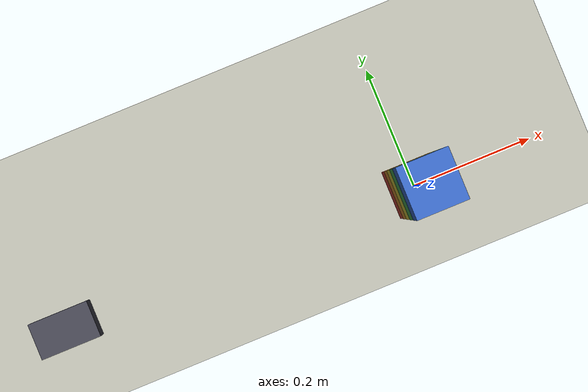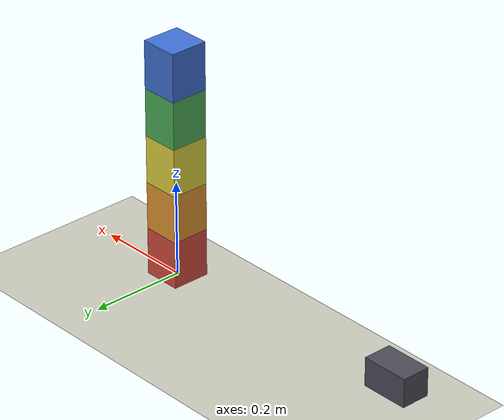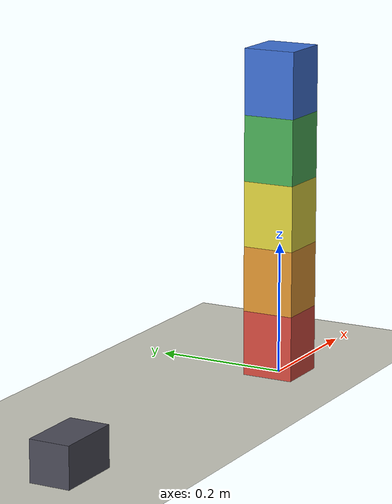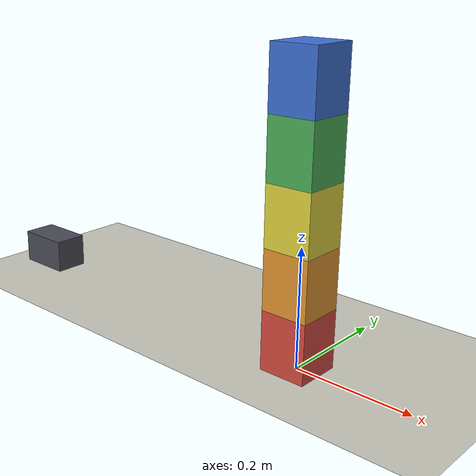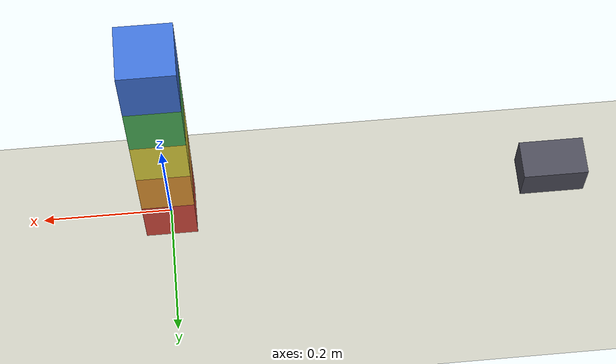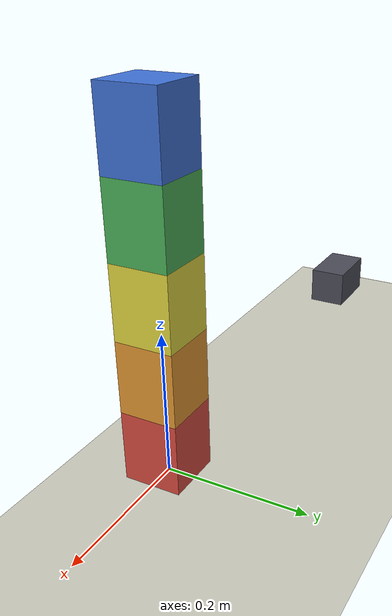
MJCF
<mujoco model="toppling_stack">
  <option timestep="0.002"/>
  <visual>
    <global offwidth="1280" offheight="720"/>
  </visual>
  <worldbody>
    <light name="sun" pos="0 0 3" dir="0 0 -1" diffuse="0.8 0.8 0.8"/>
    <light name="fill" pos="-2 -2 2" dir="1 1 -1" diffuse="0.3 0.3 0.3"/>
    <geom name="floor" type="plane" size="3 3 0.1" rgba="0.8 0.8 0.75 1" friction="0.5 0.005 0.0001"/>

    <body name="block1" pos="0 0 0.05">
      <freejoint name="block1_free"/>
      <geom name="block1_geom" type="box" size="0.04 0.04 0.05" density="500" friction="0.6 0.005 0.0001" contype="3" conaffinity="3" rgba="0.85 0.3 0.25 1"/>
    </body>
    <body name="block2" pos="0 0 0.15">
      <freejoint name="block2_free"/>
      <geom name="block2_geom" type="box" size="0.04 0.04 0.05" density="500" friction="0.6 0.005 0.0001" rgba="0.9 0.6 0.2 1"/>
    </body>
    <body name="block3" pos="0 0 0.25">
      <freejoint name="block3_free"/>
      <geom name="block3_geom" type="box" size="0.04 0.04 0.05" density="500" friction="0.6 0.005 0.0001" rgba="0.9 0.85 0.25 1"/>
    </body>
    <body name="block4" pos="0 0 0.35">
      <freejoint name="block4_free"/>
      <geom name="block4_geom" type="box" size="0.04 0.04 0.05" density="500" friction="0.6 0.005 0.0001" rgba="0.3 0.7 0.35 1"/>
    </body>
    <body name="block5" pos="0 0 0.45">
      <freejoint name="block5_free"/>
      <geom name="block5_geom" type="box" size="0.04 0.04 0.05" density="500" friction="0.6 0.005 0.0001" rgba="0.25 0.45 0.85 1"/>
    </body>

    <body name="ram" pos="-0.6 0 0.05">
      <joint name="ram_slide" type="slide" axis="1 0 0" limited="true" range="0 0.58" damping="4"/>
      <geom name="ram_geom" type="box" size="0.05 0.03 0.03" density="2000" friction="0.6 0.005 0.0001" contype="2" conaffinity="2" rgba="0.3 0.3 0.35 1"/>
    </body>
  </worldbody>

  <actuator>
    <position name="ram_motor" joint="ram_slide" kp="1000" ctrllimited="true" ctrlrange="0 1" forcelimited="true" forcerange="-10 10"/>
  </actuator>

  <keyframe>
    <key name="start" qpos="0 0 0.05 1 0 0 0  0 0 0.15 1 0 0 0  0 0 0.25 1 0 0 0  0 0 0.35 1 0 0 0  0 0 0.45 1 0 0 0  0" ctrl="1"/>
  </keyframe>
</mujoco>
